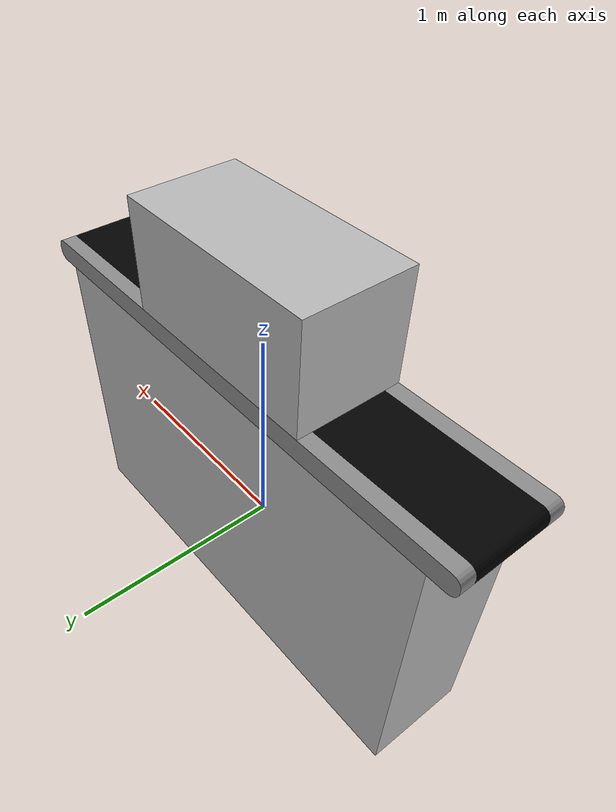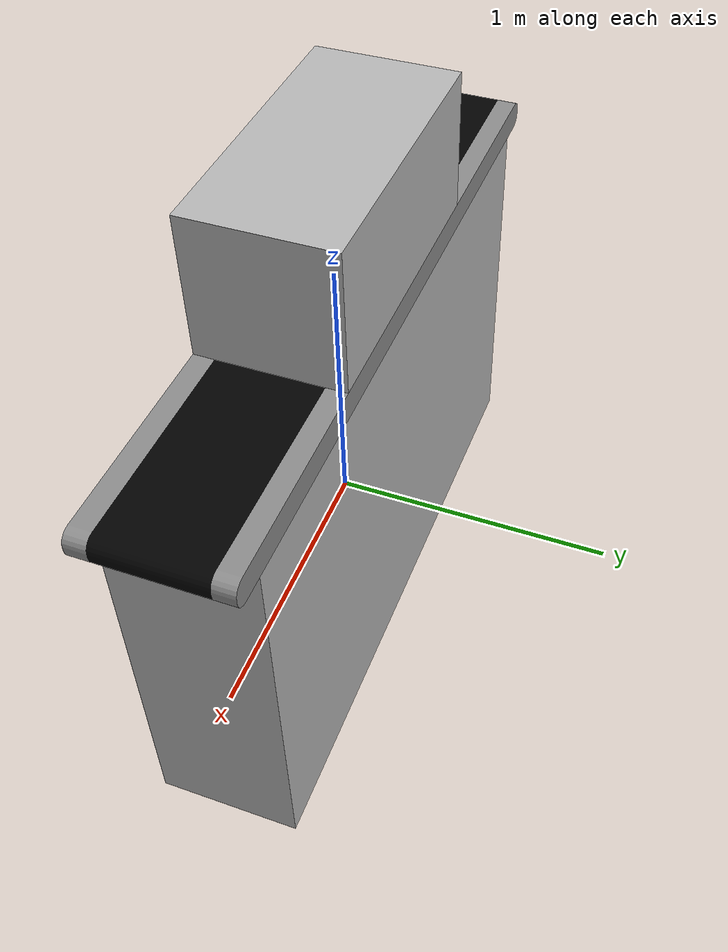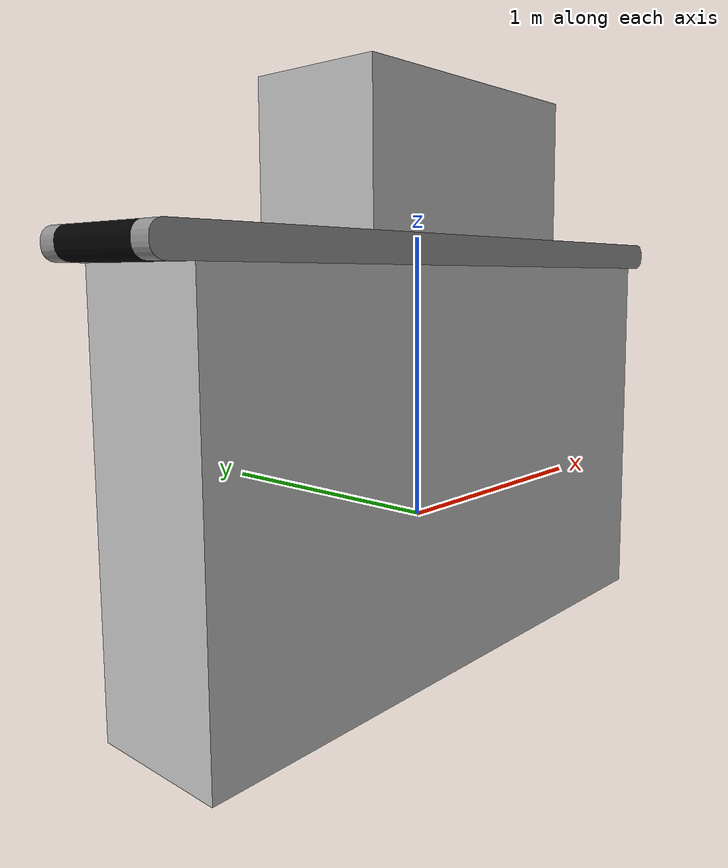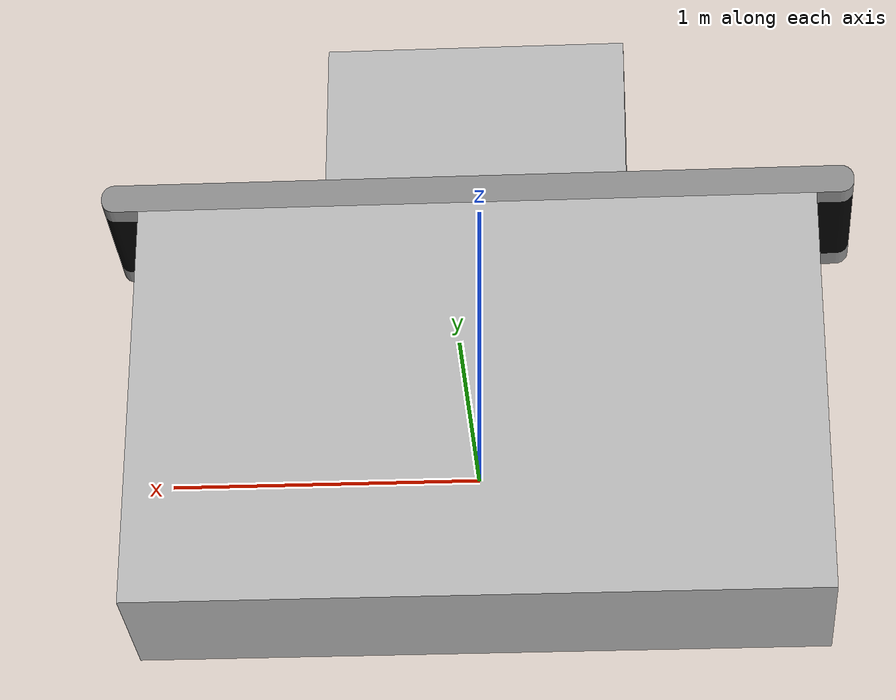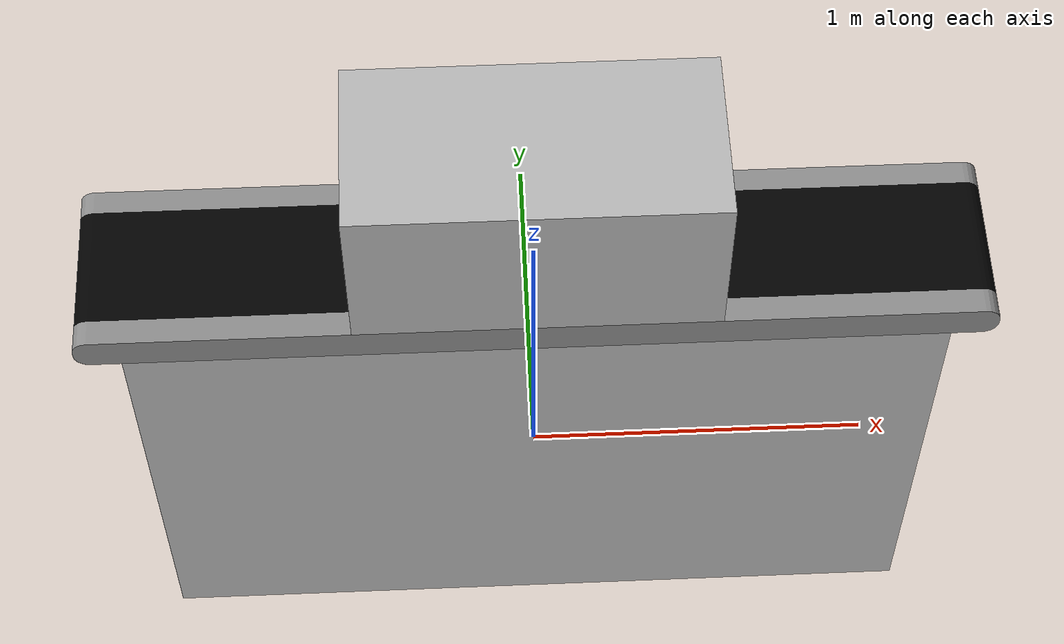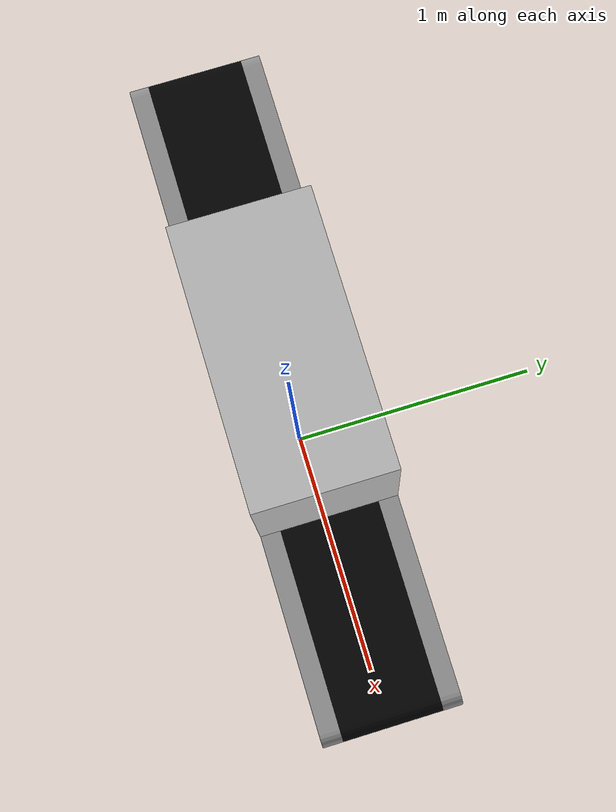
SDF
<?xml version='1.0'?>
<sdf version='1.6'>
  <model name='conveyor'>
    <link name='link'>
      <self_collide>0</self_collide>
      <enable_wind>0</enable_wind>
      <kinematic>0</kinematic>
      <pose frame=''>0 0 0 0 -0 0</pose>
      <gravity>1</gravity>
      <inertial>
        <mass>1</mass>
        <pose frame=''>0 0 0 0 -0 0</pose>
        <inertia>
          <ixx>1</ixx>
          <ixy>0</ixy>
          <ixz>0</ixz>
          <iyy>1</iyy>
          <iyz>0</iyz>
          <izz>1</izz>
        </inertia>
      </inertial>
      <visual name='visual'>
        <pose frame=''>0 0 0.95 0 -0 0</pose>
        <geometry>
          <mesh>
            <scale>0.5 0.25 0.5</scale>
            <uri>model://conveyor/meshes/conveyor2.dae</uri>
          </mesh>
        </geometry>
      </visual>
      <collision name='collision_0'>
        <laser_retro>0</laser_retro>
        <max_contacts>10</max_contacts>
        <pose frame=''>0 0 0.95 0 -0 0</pose>
        <geometry>
          <box>
            <size>2.5 0.25 0.1</size>
          </box>
        </geometry>
        <surface>
          <friction>
            <ode>
              <mu>1</mu>
              <mu2>1</mu2>
              <fdir1>0 0 0</fdir1>
              <slip1>0</slip1>
              <slip2>0</slip2>
            </ode>
            <torsional>
              <coefficient>1</coefficient>
              <patch_radius>0</patch_radius>
              <surface_radius>0</surface_radius>
              <use_patch_radius>1</use_patch_radius>
              <ode>
                <slip>0</slip>
              </ode>
            </torsional>
          </friction>
          <bounce>
            <restitution_coefficient>0</restitution_coefficient>
            <threshold>1e+06</threshold>
          </bounce>
          <contact>
            <collide_without_contact>0</collide_without_contact>
            <collide_without_contact_bitmask>1</collide_without_contact_bitmask>
            <collide_bitmask>1</collide_bitmask>
            <ode>
              <soft_cfm>0</soft_cfm>
              <soft_erp>0.2</soft_erp>
              <kp>1e+13</kp>
              <kd>1</kd>
              <max_vel>0.01</max_vel>
              <min_depth>0</min_depth>
            </ode>
            <bullet>
              <split_impulse>1</split_impulse>
              <split_impulse_penetration_threshold>-0.01</split_impulse_penetration_threshold>
              <soft_cfm>0</soft_cfm>
              <soft_erp>0.2</soft_erp>
              <kp>1e+13</kp>
              <kd>1</kd>
            </bullet>
          </contact>
        </surface>
      </collision>
    </link>
    <link name="link2">
      <pose>0 0 0.2 0 0 0</pose>
      <collision name="surface">
        <geometry>
          <box>
            <size>2.25 0.5 1.4</size>
          </box>
        </geometry>
      </collision>
      <visual name="visual">
        <geometry>
          <box>
            <size>2.25 0.5 1.4</size>
          </box>
        </geometry>
      </visual>
    </link>
    <link name="link3">
      <pose>0 0 1.25 0 0 0</pose>
      <visual name="visual">
        <geometry>
          <box>
            <size>1 0.5 0.5</size>
          </box>
        </geometry>
      </visual>
    </link>
    <static>1</static>
    <allow_auto_disable>1</allow_auto_disable>
  </model>
</sdf>
